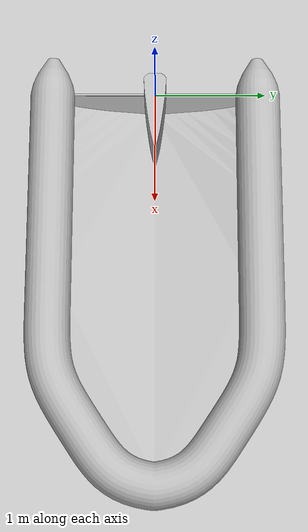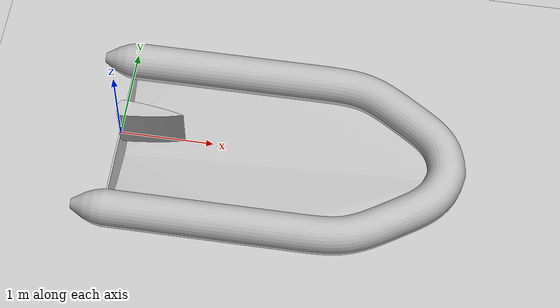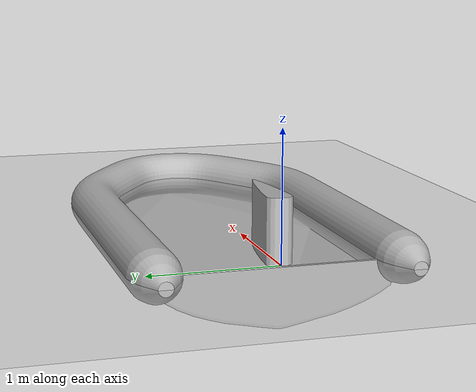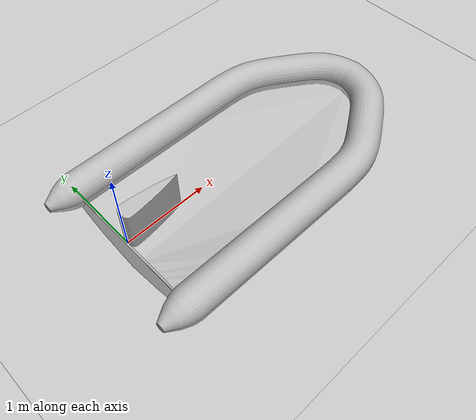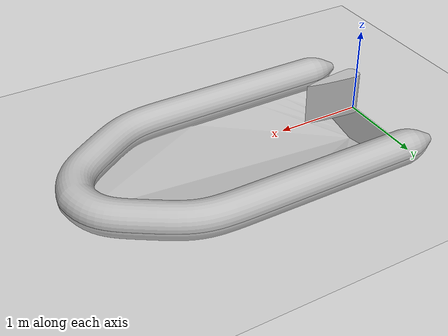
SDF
<?xml version="1.0"?>
<sdf version="1.4">
  <world name="default">

    <include>
      <uri>model://ground_plane</uri>
    </include>

    <include>
      <uri>model://sun</uri>
    </include>

    <model name="Boat_Model">
      <pose>0 0 0 0 0 0</pose>

      <static>false</static>

      <link name="body">

	<gravity>0</gravity>

	<collision name="collision">
          <geometry>
            <mesh><uri>file://Boat1V3.dae</uri></mesh>
          </geometry>
        </collision>

        <visual name="visual">
          <geometry>
            <mesh><uri>file://Boat1V3.dae</uri></mesh>
          </geometry>
        </visual>
      </link>

      <link name="rudder">

	<gravity>0</gravity>

	<collision name="collision">
          <geometry>
            <mesh><uri>file://Rudder1.dae</uri></mesh>
          </geometry>
        </collision>

        <visual name="visual">
          <geometry>
            <mesh><uri>file://Rudder1.dae</uri></mesh>
          </geometry>
        </visual>
      </link>

	<plugin name="BoatCode" filename="build/libBoatCode.so"/>
    </model>
  </world>
</sdf>
